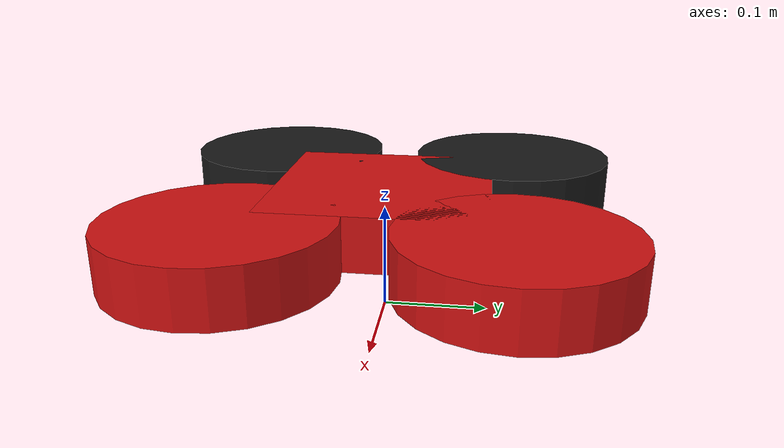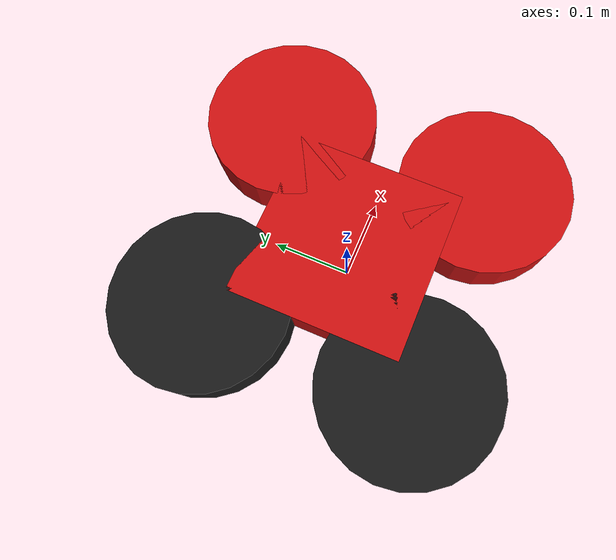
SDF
<?xml version='1.0'?>
<sdf version='1.4'>
  <model name="ardrone">
    <pose>0 0 .1 0 0 0</pose>

    <link name="chassis">
      <velocity_decay>
        <linear>0.001</linear>
      </velocity_decay>

      <inertial><!-- Converted to SI from Paparazzi's ARDrone model for JSBsim -->
        <mass>0.4</mass>
        <inertia>
          <ixx> 0.00678 </ixx>
          <iyy> 0.00678 </iyy>
          <izz> 0.01356 </izz>
          <ixy> 0. </ixy>
          <ixz> 0. </ixz>
          <iyz> 0. </iyz>
        </inertia>
      </inertial>

      <collision name="collision">
        <geometry>
          <box>
            <size>0.4 0.4 0.05</size>
          </box>
        </geometry>
      </collision>

      <visual name="visual">
        <geometry>
          <box>
            <size>0.2 0.2 0.05</size>
          </box>
        </geometry>
        <material>
          <diffuse>0.82 0.07 0.07 1</diffuse>
          <ambient>0.82 0.07 0.07 1</ambient>
        </material>
      </visual>

      <sensor name="contactsensor" type="contact">
        <contact>
          <collision>collision</collision>
        </contact>
      </sensor>
    </link>

    <!-- MOTORS -->
    <link name="nw_motor">
      <pose>0.12 0.12 0 0 0 0</pose>
      <inertial>
        <mass>0.01</mass>
        <inertia>
          <ixx>0.0001</ixx>
          <iyy>0.0001</iyy>
          <izz>0.0001</izz>
          <ixy>0</ixy>
          <iyz>0</iyz>
          <ixz>0</ixz>
        </inertia>
      </inertial>
      <visual name="visual">
        <geometry>
          <cylinder>
            <radius>0.10</radius>
            <length>0.05</length>
          </cylinder>
        </geometry>
        <material>
          <diffuse>0.82 0.07 0.07 1</diffuse>
          <ambient>0.82 0.07 0.07 1</ambient>
        </material>
      </visual>
    </link>

    <joint type="fixed" name="nw_motor_joint">
      <parent>chassis</parent>
      <child>nw_motor</child>
    </joint>

    <link name="se_motor">
      <pose>-0.12 -0.12 0 0 0 0</pose>
      <inertial>
        <mass>0.01</mass>
        <inertia>
          <ixx>0.0001</ixx>
          <iyy>0.0001</iyy>
          <izz>0.0001</izz>
          <ixy>0</ixy>
          <iyz>0</iyz>
          <ixz>0</ixz>
        </inertia>
      </inertial>
      <visual name="visual">
        <geometry>
          <cylinder>
            <radius>0.10</radius>
            <length>0.05</length>
          </cylinder>
        </geometry>
        <material>
          <diffuse>0.1 0.1 0.1 1</diffuse>
          <ambient>0.1 0.1 0.1 1</ambient>
        </material>
      </visual>
    </link>

    <joint type="fixed" name="se_motor_joint">
      <parent>chassis</parent>
      <child>se_motor</child>
    </joint>

    <link name="ne_motor">
      <pose>0.12 -0.12 0 0 0 0</pose>
      <inertial>
        <mass>0.01</mass>
        <inertia>
          <ixx>0.0001</ixx>
          <iyy>0.0001</iyy>
          <izz>0.0001</izz>
          <ixy>0</ixy>
          <iyz>0</iyz>
          <ixz>0</ixz>
        </inertia>
      </inertial>
      <visual name="visual">
        <geometry>
          <cylinder>
            <radius>0.10</radius>
            <length>0.05</length>
          </cylinder>
        </geometry>
        <material>
          <diffuse>0.82 0.07 0.07 1</diffuse>
          <ambient>0.82 0.07 0.07 1</ambient>
        </material>
      </visual>
    </link>

    <joint type="fixed" name="ne_motor_joint">
      <parent>chassis</parent>
      <child>ne_motor</child>
    </joint>

    <link name="sw_motor">
      <pose>-0.12 0.12 0 0 0 0</pose>
      <inertial>
        <mass>0.01</mass>
        <inertia>
          <ixx>0.0001</ixx>
          <iyy>0.0001</iyy>
          <izz>0.0001</izz>
          <ixy>0</ixy>
          <iyz>0</iyz>
          <ixz>0</ixz>
        </inertia>
      </inertial>
      <visual name="visual">
        <geometry>
          <cylinder>
            <radius>0.10</radius>
            <length>0.05</length>
          </cylinder>
        </geometry>
        <material>
          <diffuse>0.1 0.1 0.1 1</diffuse>
          <ambient>0.1 0.1 0.1 1</ambient>
        </material>
      </visual>
    </link>

    <joint type="fixed" name="sw_motor_joint">
      <parent>chassis</parent>
      <child>sw_motor</child>
    </joint>

    <!-- CAMERAS -->

    <link name="front_camera">
      <pose>0.15 0 0 0 0 0</pose>
      <inertial>
        <mass>0.001</mass>
        <inertia>
          <ixx>0.0001</ixx>
          <iyy>0.0001</iyy>
          <izz>0.0001</izz>
          <ixy>0</ixy>
          <iyz>0</iyz>
          <ixz>0</ixz>
        </inertia>
      </inertial>
      <sensor type="camera" name="front_camera">
        <update_rate>30.0</update_rate>
        <camera name="front_camera">
          <horizontal_fov>1.3962634</horizontal_fov>
          <image>
            <width>1280</width>
            <height>720</height>
            <format>R8G8B8</format>
          </image>
          <clip>
            <near>0.02</near>
            <far>300</far>
          </clip>
          <noise>
            <type>gaussian</type>
            <!-- Noise is sampled independently per pixel on each frame. That pixel's
              noise value is added to each of its color channels, which at that point lie
              in the range [0,1]. -->
            <mean>0.0</mean>
            <stddev>0.007</stddev>
          </noise>
        </camera>
      </sensor>
    </link>

    <joint name="front_camera_joint" type="fixed">
      <parent>chassis</parent>
      <child>front_camera</child>
    </joint>

    <link name="bottom_camera">
      <pose>0 0 -.03 0 1.57 0</pose>
      <inertial>
        <mass>0.001</mass>
        <inertia>
          <ixx>0.0001</ixx>
          <iyy>0.0001</iyy>
          <izz>0.0001</izz>
          <ixy>0</ixy>
          <iyz>0</iyz>
          <ixz>0</ixz>
        </inertia>
      </inertial>
      <sensor type="camera" name="bottom_camera">
        <update_rate>30.0</update_rate>
        <camera name="bottom_camera">
          <horizontal_fov>1.3962634</horizontal_fov>
          <image>
            <width>320</width>
            <height>240</height>
            <format>R8G8B8</format>
          </image>
          <clip>
            <near>0.02</near>
            <far>300</far>
          </clip>
          <noise>
            <type>gaussian</type>
            <!-- Noise is sampled independently per pixel on each frame. That pixel's
              noise value is added to each of its color channels, which at that point lie
              in the range [0,1]. -->
            <mean>0.0</mean>
            <stddev>0.007</stddev>
          </noise>
        </camera>
      </sensor>
    </link>

    <joint name="bottom_camera_joint" type="fixed">
      <parent>chassis</parent>
      <child>bottom_camera</child>
    </joint>
  </model>
</sdf>
